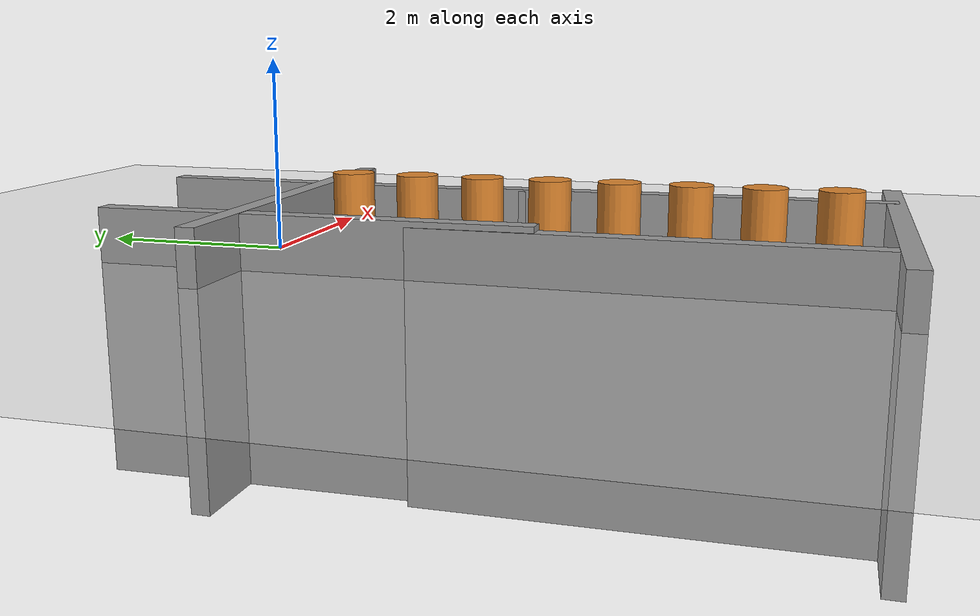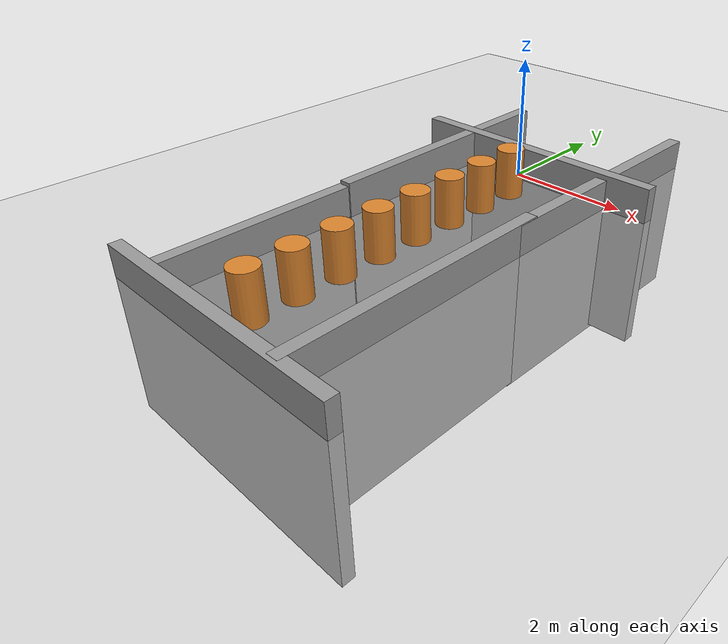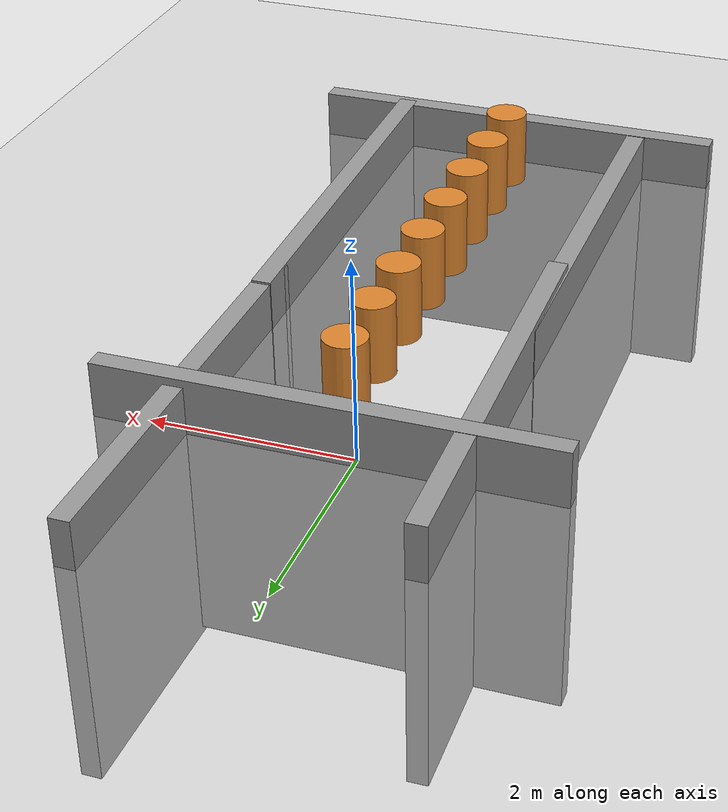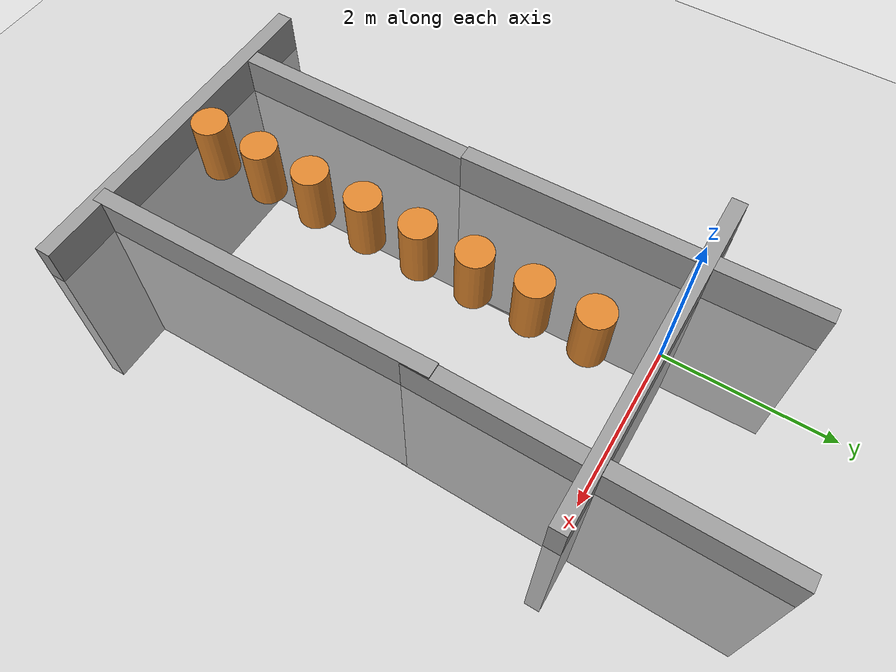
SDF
<sdf version='1.7'>
  <world name='default'>
    <plugin name='set_entity_state_plugin' filename='libset_entity_state.so'>
      <robot_name>my_robot</robot_name>
    </plugin>
    <plugin name='gazebo_ros_state' filename='libgazebo_ros_state.so'>
      <ros>
        <argument>model_states:=model_states_demo</argument>
      </ros>
      <update_rate>1.0</update_rate>
    </plugin>
    <light name='sun' type='directional'>
      <cast_shadows>1</cast_shadows>
      <pose>0 0 18 0 -0.35 0.2</pose>
      <diffuse>0.96 0.94 0.90 1</diffuse>
      <specular>0.16 0.16 0.16 1</specular>
      <attenuation>
        <range>1000</range>
        <constant>0.82</constant>
        <linear>0.006</linear>
        <quadratic>0.0008</quadratic>
      </attenuation>
      <direction>-0.35 0.18 -0.92</direction>
      <spot>
        <inner_angle>0</inner_angle>
        <outer_angle>0</outer_angle>
        <falloff>0</falloff>
      </spot>
    </light>
    <light name='fill_light' type='point'>
      <pose>0 0 9 0 0 0</pose>
      <diffuse>0.42 0.46 0.52 1</diffuse>
      <specular>0.03 0.03 0.03 1</specular>
      <attenuation>
        <range>30</range>
        <constant>0.7</constant>
        <linear>0.02</linear>
        <quadratic>0.001</quadratic>
      </attenuation>
    </light>
    <model name='ground_plane'>
      <static>1</static>
      <link name='link'>
        <collision name='collision'>
          <geometry>
            <plane>
              <normal>0 0 1</normal>
              <size>100 100</size>
            </plane>
          </geometry>
          <surface>
            <friction>
              <ode>
                <mu>100</mu>
                <mu2>50</mu2>
              </ode>
              <torsional>
                <ode/>
              </torsional>
            </friction>
            <contact>
              <ode/>
            </contact>
            <bounce/>
          </surface>
          <max_contacts>10</max_contacts>
        </collision>
        <visual name='visual'>
          <cast_shadows>0</cast_shadows>
          <geometry>
            <plane>
              <normal>0 0 1</normal>
              <size>100 100</size>
            </plane>
          </geometry>
          <material>
            <script>
              <uri>file://media/materials/scripts/gazebo.material</uri>
              <name>Gazebo/Grey</name>
            </script>
          </material>
        </visual>
        <self_collide>0</self_collide>
        <enable_wind>0</enable_wind>
        <kinematic>0</kinematic>
      </link>
    </model>
    <gravity>0 0 -9.8</gravity>
    <magnetic_field>6e-06 2.3e-05 -4.2e-05</magnetic_field>
    <atmosphere type='adiabatic'/>
    <physics type='ode'>
      <max_step_size>0.001</max_step_size>
      <real_time_factor>1</real_time_factor>
      <real_time_update_rate>1000</real_time_update_rate>
    </physics>
    <scene>
      <ambient>0.58 0.60 0.64 1</ambient>
      <background>0.90 0.93 0.98 1</background>
      <shadows>1</shadows>
    </scene>
    <wind/>
    <spherical_coordinates>
      <surface_model>EARTH_WGS84</surface_model>
      <latitude_deg>0</latitude_deg>
      <longitude_deg>0</longitude_deg>
      <elevation>0</elevation>
      <heading_deg>0</heading_deg>
    </spherical_coordinates>
    <model name='grey_wall'>
      <static>1</static>
      <link name='link'>
        <pose>0 0 1.4 0 -0 0</pose>
        <collision name='collision'>
          <geometry>
            <box>
              <size>4.5 0.2 2.8</size>
            </box>
          </geometry>
          <max_contacts>10</max_contacts>
          <surface>
            <contact>
              <ode/>
            </contact>
            <bounce/>
            <friction>
              <torsional>
                <ode/>
              </torsional>
              <ode/>
            </friction>
          </surface>
        </collision>
        <visual name='visual'>
          <cast_shadows>0</cast_shadows>
          <geometry>
            <box>
              <size>4.5 0.2 2.8</size>
            </box>
          </geometry>
          <material>
            <script>
              <uri>model://grey_wall/materials/scripts</uri>
              <uri>model://grey_wall/materials/textures</uri>
              <name>vrc/grey_wall</name>
            </script>
          </material>
        </visual>
        <self_collide>0</self_collide>
        <enable_wind>0</enable_wind>
        <kinematic>0</kinematic>
      </link>
      <pose>0.41438 -6.33588 -2.29761 0 -0 0</pose>
    </model>
    <model name='grey_wall_0'>
      <static>1</static>
      <link name='link'>
        <pose>0 0 1.4 0 -0 0</pose>
        <collision name='collision'>
          <geometry>
            <box>
              <size>4.5 0.2 2.8</size>
            </box>
          </geometry>
          <max_contacts>10</max_contacts>
          <surface>
            <contact>
              <ode/>
            </contact>
            <bounce/>
            <friction>
              <torsional>
                <ode/>
              </torsional>
              <ode/>
            </friction>
          </surface>
        </collision>
        <visual name='visual'>
          <cast_shadows>0</cast_shadows>
          <geometry>
            <box>
              <size>4.5 0.2 2.8</size>
            </box>
          </geometry>
          <material>
            <script>
              <uri>model://grey_wall/materials/scripts</uri>
              <uri>model://grey_wall/materials/textures</uri>
              <name>vrc/grey_wall</name>
            </script>
          </material>
        </visual>
        <self_collide>0</self_collide>
        <enable_wind>0</enable_wind>
        <kinematic>0</kinematic>
      </link>
      <pose>-1.00312 -4.05964 -2.30262 0 0 -1.57009</pose>
    </model>
    <model name='grey_wall_1'>
      <static>1</static>
      <link name='link'>
        <pose>0 0 1.4 0 -0 0</pose>
        <collision name='collision'>
          <geometry>
            <box>
              <size>4.5 0.2 2.8</size>
            </box>
          </geometry>
          <max_contacts>10</max_contacts>
          <surface>
            <contact>
              <ode/>
            </contact>
            <bounce/>
            <friction>
              <torsional>
                <ode/>
              </torsional>
              <ode/>
            </friction>
          </surface>
        </collision>
        <visual name='visual'>
          <cast_shadows>0</cast_shadows>
          <geometry>
            <box>
              <size>4.5 0.2 2.8</size>
            </box>
          </geometry>
          <material>
            <script>
              <uri>model://grey_wall/materials/scripts</uri>
              <uri>model://grey_wall/materials/textures</uri>
              <name>vrc/grey_wall</name>
            </script>
          </material>
        </visual>
        <self_collide>0</self_collide>
        <enable_wind>0</enable_wind>
        <kinematic>0</kinematic>
      </link>
      <pose>0.27990 -0.01709 -2.23981 0 -0 0</pose>
    </model>
    <model name='grey_wall_2'>
      <static>1</static>
      <link name='link'>
        <pose>0 0 1.4 0 -0 0</pose>
        <collision name='collision'>
          <geometry>
            <box>
              <size>4.5 0.2 2.8</size>
            </box>
          </geometry>
          <max_contacts>10</max_contacts>
          <surface>
            <contact>
              <ode/>
            </contact>
            <bounce/>
            <friction>
              <torsional>
                <ode/>
              </torsional>
              <ode/>
            </friction>
          </surface>
        </collision>
        <visual name='visual'>
          <cast_shadows>0</cast_shadows>
          <geometry>
            <box>
              <size>4.5 0.2 2.8</size>
            </box>
          </geometry>
          <material>
            <script>
              <uri>model://grey_wall/materials/scripts</uri>
              <uri>model://grey_wall/materials/textures</uri>
              <name>vrc/grey_wall</name>
            </script>
          </material>
        </visual>
        <self_collide>0</self_collide>
        <enable_wind>0</enable_wind>
        <kinematic>0</kinematic>
      </link>
      <pose>1.69627 -4.11930 -2.29691 0 0 -1.56146</pose>
    </model>
    <model name='grey_wall_3'>
      <static>1</static>
      <link name='link'>
        <pose>0 0 1.4 0 -0 0</pose>
        <collision name='collision'>
          <geometry>
            <box>
              <size>4.5 0.2 2.8</size>
            </box>
          </geometry>
          <max_contacts>10</max_contacts>
          <surface>
            <contact>
              <ode/>
            </contact>
            <bounce/>
            <friction>
              <torsional>
                <ode/>
              </torsional>
              <ode/>
            </friction>
          </surface>
        </collision>
        <visual name='visual'>
          <cast_shadows>0</cast_shadows>
          <geometry>
            <box>
              <size>4.5 0.2 2.8</size>
            </box>
          </geometry>
          <material>
            <script>
              <uri>model://grey_wall/materials/scripts</uri>
              <uri>model://grey_wall/materials/textures</uri>
              <name>vrc/grey_wall</name>
            </script>
          </material>
        </visual>
        <self_collide>0</self_collide>
        <enable_wind>0</enable_wind>
        <kinematic>0</kinematic>
      </link>
      <pose>1.69927 -0.06580 -2.31846 0 0 -1.58035</pose>
    </model>
    <model name='grey_wall_4'>
      <static>1</static>
      <link name='link'>
        <pose>0 0 1.4 0 -0 0</pose>
        <collision name='collision'>
          <geometry>
            <box>
              <size>4.5 0.2 2.8</size>
            </box>
          </geometry>
          <max_contacts>10</max_contacts>
          <surface>
            <contact>
              <ode/>
            </contact>
            <bounce/>
            <friction>
              <torsional>
                <ode/>
              </torsional>
              <ode/>
            </friction>
          </surface>
        </collision>
        <visual name='visual'>
          <cast_shadows>0</cast_shadows>
          <geometry>
            <box>
              <size>4.5 0.2 2.8</size>
            </box>
          </geometry>
          <material>
            <script>
              <uri>model://grey_wall/materials/scripts</uri>
              <uri>model://grey_wall/materials/textures</uri>
              <name>vrc/grey_wall</name>
            </script>
          </material>
        </visual>
        <self_collide>0</self_collide>
        <enable_wind>0</enable_wind>
        <kinematic>0</kinematic>
      </link>
      <pose>-1.01419 -0.81591 -2.24309 0 0 -1.5555</pose>
    </model>

    <gui fullscreen='0'>
      <camera name='user_camera'>
        <pose>6.24905 -2.38144 12.46 0 1.0338 3.06644</pose>
        <view_controller>orbit</view_controller>
        <projection_type>perspective</projection_type>
      </camera>
    </gui>

  <model name="dyn_obs_0">
    <static>true</static>
    <pose>0.36000 -0.72000 0.4 0 0 0</pose>
    <link name="link">
      <collision name="collision"><geometry><cylinder><radius>0.22</radius><length>0.8</length></cylinder></geometry></collision>
      <visual name="visual"><geometry><cylinder><radius>0.22</radius><length>0.8</length></cylinder></geometry>
        <cast_shadows>true</cast_shadows>
        <material><ambient>0.52 0.30 0.10 1</ambient><diffuse>0.86 0.52 0.18 1</diffuse><specular>0.08 0.06 0.04 1</specular><emissive>0 0 0 1</emissive></material></visual>
    </link>
  </model>
  <model name="dyn_obs_1">
    <static>true</static>
    <pose>0.36000 -1.44000 0.4 0 0 0</pose>
    <link name="link">
      <collision name="collision"><geometry><cylinder><radius>0.22</radius><length>0.8</length></cylinder></geometry></collision>
      <visual name="visual"><geometry><cylinder><radius>0.22</radius><length>0.8</length></cylinder></geometry>
        <cast_shadows>true</cast_shadows>
        <material><ambient>0.52 0.30 0.10 1</ambient><diffuse>0.86 0.52 0.18 1</diffuse><specular>0.08 0.06 0.04 1</specular><emissive>0 0 0 1</emissive></material></visual>
    </link>
  </model>
  <model name="dyn_obs_2">
    <static>true</static>
    <pose>0.36000 -2.16000 0.4 0 0 0</pose>
    <link name="link">
      <collision name="collision"><geometry><cylinder><radius>0.22</radius><length>0.8</length></cylinder></geometry></collision>
      <visual name="visual"><geometry><cylinder><radius>0.22</radius><length>0.8</length></cylinder></geometry>
        <cast_shadows>true</cast_shadows>
        <material><ambient>0.52 0.30 0.10 1</ambient><diffuse>0.86 0.52 0.18 1</diffuse><specular>0.08 0.06 0.04 1</specular><emissive>0 0 0 1</emissive></material></visual>
    </link>
  </model>
  <model name="dyn_obs_3">
    <static>true</static>
    <pose>0.36000 -2.88000 0.4 0 0 0</pose>
    <link name="link">
      <collision name="collision"><geometry><cylinder><radius>0.22</radius><length>0.8</length></cylinder></geometry></collision>
      <visual name="visual"><geometry><cylinder><radius>0.22</radius><length>0.8</length></cylinder></geometry>
        <cast_shadows>true</cast_shadows>
        <material><ambient>0.52 0.30 0.10 1</ambient><diffuse>0.86 0.52 0.18 1</diffuse><specular>0.08 0.06 0.04 1</specular><emissive>0 0 0 1</emissive></material></visual>
    </link>
  </model>
  <model name="dyn_obs_4">
    <static>true</static>
    <pose>0.36000 -3.60000 0.4 0 0 0</pose>
    <link name="link">
      <collision name="collision"><geometry><cylinder><radius>0.22</radius><length>0.8</length></cylinder></geometry></collision>
      <visual name="visual"><geometry><cylinder><radius>0.22</radius><length>0.8</length></cylinder></geometry>
        <cast_shadows>true</cast_shadows>
        <material><ambient>0.52 0.30 0.10 1</ambient><diffuse>0.86 0.52 0.18 1</diffuse><specular>0.08 0.06 0.04 1</specular><emissive>0 0 0 1</emissive></material></visual>
    </link>
  </model>
  <model name="dyn_obs_5">
    <static>true</static>
    <pose>0.36000 -4.32000 0.4 0 0 0</pose>
    <link name="link">
      <collision name="collision"><geometry><cylinder><radius>0.22</radius><length>0.8</length></cylinder></geometry></collision>
      <visual name="visual"><geometry><cylinder><radius>0.22</radius><length>0.8</length></cylinder></geometry>
        <cast_shadows>true</cast_shadows>
        <material><ambient>0.52 0.30 0.10 1</ambient><diffuse>0.86 0.52 0.18 1</diffuse><specular>0.08 0.06 0.04 1</specular><emissive>0 0 0 1</emissive></material></visual>
    </link>
  </model>
  <model name="dyn_obs_6">
    <static>true</static>
    <pose>0.36000 -5.04000 0.4 0 0 0</pose>
    <link name="link">
      <collision name="collision"><geometry><cylinder><radius>0.22</radius><length>0.8</length></cylinder></geometry></collision>
      <visual name="visual"><geometry><cylinder><radius>0.22</radius><length>0.8</length></cylinder></geometry>
        <cast_shadows>true</cast_shadows>
        <material><ambient>0.52 0.30 0.10 1</ambient><diffuse>0.86 0.52 0.18 1</diffuse><specular>0.08 0.06 0.04 1</specular><emissive>0 0 0 1</emissive></material></visual>
    </link>
  </model>
  <model name="dyn_obs_7">
    <static>true</static>
    <pose>0.36000 -5.76000 0.4 0 0 0</pose>
    <link name="link">
      <collision name="collision"><geometry><cylinder><radius>0.22</radius><length>0.8</length></cylinder></geometry></collision>
      <visual name="visual"><geometry><cylinder><radius>0.22</radius><length>0.8</length></cylinder></geometry>
        <cast_shadows>true</cast_shadows>
        <material><ambient>0.52 0.30 0.10 1</ambient><diffuse>0.86 0.52 0.18 1</diffuse><specular>0.08 0.06 0.04 1</specular><emissive>0 0 0 1</emissive></material></visual>
    </link>
  </model>
</world>
</sdf>
